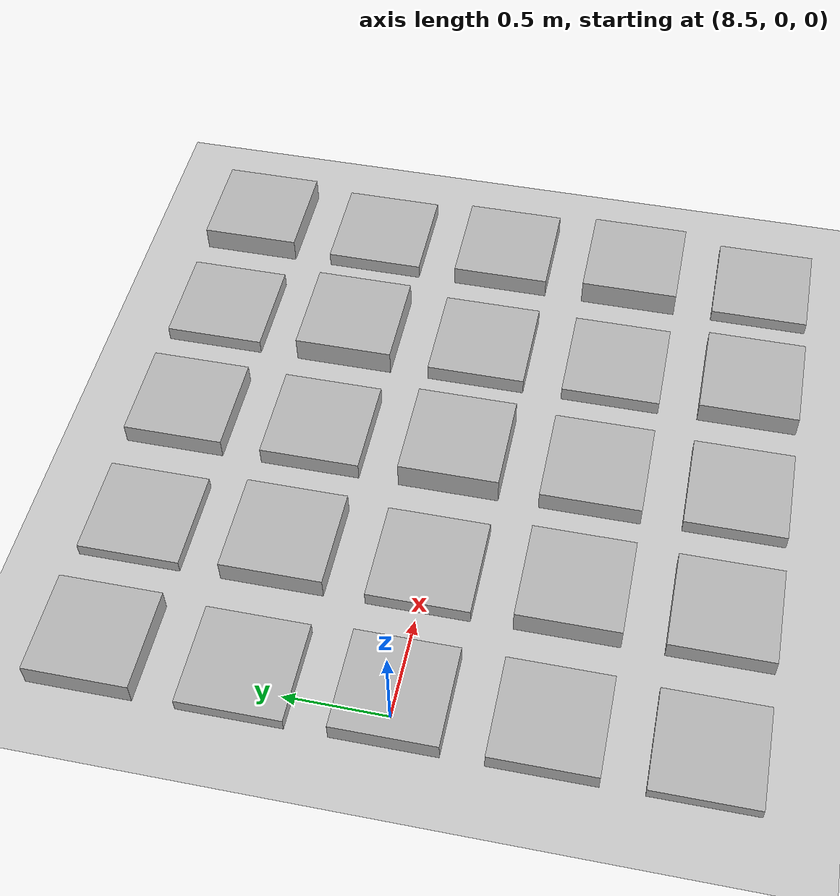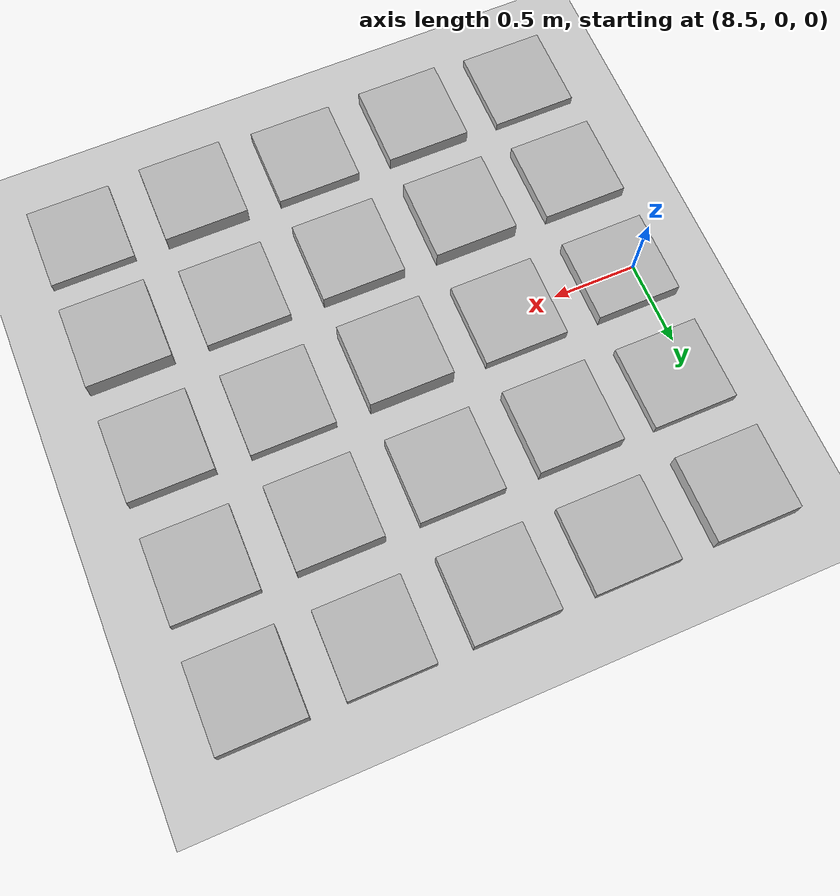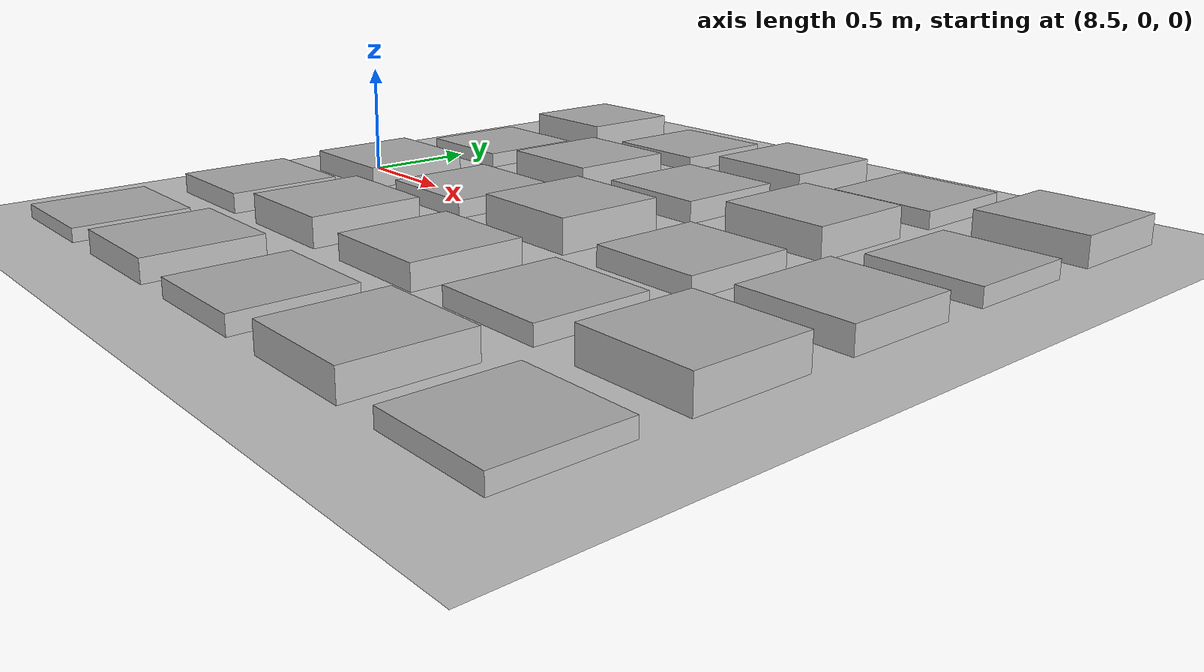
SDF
<?xml version="1.0"?>
<sdf version="1.7">
  <world name="rocks">
    <include>
      <uri>model://sun</uri>
    </include>

    <physics type="ode">
      <max_step_size>0.001</max_step_size>
      <real_time_update_rate>1000</real_time_update_rate>
    </physics>
    <gravity>0 0 -9.81</gravity>

    <model name="ground_plane">
      <static>true</static>
      <pose>0 0 0 0 0 0</pose>
      <link name="link">
        <collision name="collision">
          <geometry>
            <plane>
              <normal>0 0 1</normal>
              <size>200 200</size>
            </plane>
          </geometry>
        </collision>
        <visual name="visual">
          <geometry>
            <plane>
              <normal>0 0 1</normal>
              <size>200 200</size>
            </plane>
          </geometry>
        </visual>
      </link>
    </model>

    <!-- Rough patch built from small height bumps (self-contained, no external models) -->
    <model name="rough_patch">
      <static>true</static>
      <pose>10 0 0 0 0 0</pose>
      <link name="link">
        <!-- 5x5 grid of bumps: spacing 0.70m, varying heights -->
        <collision name="b00"><pose>-1.40 -1.40 0.03 0 0 0</pose><geometry><box><size>0.50 0.50 0.06</size></box></geometry></collision>
        <visual name="b00v"><pose>-1.40 -1.40 0.03 0 0 0</pose><geometry><box><size>0.50 0.50 0.06</size></box></geometry></visual>

        <collision name="b01"><pose>-0.70 -1.40 0.05 0 0 0</pose><geometry><box><size>0.50 0.50 0.10</size></box></geometry></collision>
        <visual name="b01v"><pose>-0.70 -1.40 0.05 0 0 0</pose><geometry><box><size>0.50 0.50 0.10</size></box></geometry></visual>

        <collision name="b02"><pose>0.00 -1.40 0.04 0 0 0</pose><geometry><box><size>0.50 0.50 0.08</size></box></geometry></collision>
        <visual name="b02v"><pose>0.00 -1.40 0.04 0 0 0</pose><geometry><box><size>0.50 0.50 0.08</size></box></geometry></visual>

        <collision name="b03"><pose>0.70 -1.40 0.06 0 0 0</pose><geometry><box><size>0.50 0.50 0.12</size></box></geometry></collision>
        <visual name="b03v"><pose>0.70 -1.40 0.06 0 0 0</pose><geometry><box><size>0.50 0.50 0.12</size></box></geometry></visual>

        <collision name="b04"><pose>1.40 -1.40 0.035 0 0 0</pose><geometry><box><size>0.50 0.50 0.07</size></box></geometry></collision>
        <visual name="b04v"><pose>1.40 -1.40 0.035 0 0 0</pose><geometry><box><size>0.50 0.50 0.07</size></box></geometry></visual>

        <collision name="b10"><pose>-1.40 -0.70 0.045 0 0 0</pose><geometry><box><size>0.50 0.50 0.09</size></box></geometry></collision>
        <visual name="b10v"><pose>-1.40 -0.70 0.045 0 0 0</pose><geometry><box><size>0.50 0.50 0.09</size></box></geometry></visual>

        <collision name="b11"><pose>-0.70 -0.70 0.065 0 0 0</pose><geometry><box><size>0.50 0.50 0.13</size></box></geometry></collision>
        <visual name="b11v"><pose>-0.70 -0.70 0.065 0 0 0</pose><geometry><box><size>0.50 0.50 0.13</size></box></geometry></visual>

        <collision name="b12"><pose>0.00 -0.70 0.055 0 0 0</pose><geometry><box><size>0.50 0.50 0.11</size></box></geometry></collision>
        <visual name="b12v"><pose>0.00 -0.70 0.055 0 0 0</pose><geometry><box><size>0.50 0.50 0.11</size></box></geometry></visual>

        <collision name="b13"><pose>0.70 -0.70 0.040 0 0 0</pose><geometry><box><size>0.50 0.50 0.08</size></box></geometry></collision>
        <visual name="b13v"><pose>0.70 -0.70 0.040 0 0 0</pose><geometry><box><size>0.50 0.50 0.08</size></box></geometry></visual>

        <collision name="b14"><pose>1.40 -0.70 0.070 0 0 0</pose><geometry><box><size>0.50 0.50 0.14</size></box></geometry></collision>
        <visual name="b14v"><pose>1.40 -0.70 0.070 0 0 0</pose><geometry><box><size>0.50 0.50 0.14</size></box></geometry></visual>

        <collision name="b20"><pose>-1.40 0.00 0.050 0 0 0</pose><geometry><box><size>0.50 0.50 0.10</size></box></geometry></collision>
        <visual name="b20v"><pose>-1.40 0.00 0.050 0 0 0</pose><geometry><box><size>0.50 0.50 0.10</size></box></geometry></visual>

        <collision name="b21"><pose>-0.70 0.00 0.040 0 0 0</pose><geometry><box><size>0.50 0.50 0.08</size></box></geometry></collision>
        <visual name="b21v"><pose>-0.70 0.00 0.040 0 0 0</pose><geometry><box><size>0.50 0.50 0.08</size></box></geometry></visual>

        <collision name="b22"><pose>0.00 0.00 0.075 0 0 0</pose><geometry><box><size>0.50 0.50 0.15</size></box></geometry></collision>
        <visual name="b22v"><pose>0.00 0.00 0.075 0 0 0</pose><geometry><box><size>0.50 0.50 0.15</size></box></geometry></visual>

        <collision name="b23"><pose>0.70 0.00 0.045 0 0 0</pose><geometry><box><size>0.50 0.50 0.09</size></box></geometry></collision>
        <visual name="b23v"><pose>0.70 0.00 0.045 0 0 0</pose><geometry><box><size>0.50 0.50 0.09</size></box></geometry></visual>

        <collision name="b24"><pose>1.40 0.00 0.055 0 0 0</pose><geometry><box><size>0.50 0.50 0.11</size></box></geometry></collision>
        <visual name="b24v"><pose>1.40 0.00 0.055 0 0 0</pose><geometry><box><size>0.50 0.50 0.11</size></box></geometry></visual>

        <collision name="b30"><pose>-1.40 0.70 0.035 0 0 0</pose><geometry><box><size>0.50 0.50 0.07</size></box></geometry></collision>
        <visual name="b30v"><pose>-1.40 0.70 0.035 0 0 0</pose><geometry><box><size>0.50 0.50 0.07</size></box></geometry></visual>

        <collision name="b31"><pose>-0.70 0.70 0.060 0 0 0</pose><geometry><box><size>0.50 0.50 0.12</size></box></geometry></collision>
        <visual name="b31v"><pose>-0.70 0.70 0.060 0 0 0</pose><geometry><box><size>0.50 0.50 0.12</size></box></geometry></visual>

        <collision name="b32"><pose>0.00 0.70 0.050 0 0 0</pose><geometry><box><size>0.50 0.50 0.10</size></box></geometry></collision>
        <visual name="b32v"><pose>0.00 0.70 0.050 0 0 0</pose><geometry><box><size>0.50 0.50 0.10</size></box></geometry></visual>

        <collision name="b33"><pose>0.70 0.70 0.070 0 0 0</pose><geometry><box><size>0.50 0.50 0.14</size></box></geometry></collision>
        <visual name="b33v"><pose>0.70 0.70 0.070 0 0 0</pose><geometry><box><size>0.50 0.50 0.14</size></box></geometry></visual>

        <collision name="b34"><pose>1.40 0.70 0.040 0 0 0</pose><geometry><box><size>0.50 0.50 0.08</size></box></geometry></collision>
        <visual name="b34v"><pose>1.40 0.70 0.040 0 0 0</pose><geometry><box><size>0.50 0.50 0.08</size></box></geometry></visual>

        <collision name="b40"><pose>-1.40 1.40 0.060 0 0 0</pose><geometry><box><size>0.50 0.50 0.12</size></box></geometry></collision>
        <visual name="b40v"><pose>-1.40 1.40 0.060 0 0 0</pose><geometry><box><size>0.50 0.50 0.12</size></box></geometry></visual>

        <collision name="b41"><pose>-0.70 1.40 0.035 0 0 0</pose><geometry><box><size>0.50 0.50 0.07</size></box></geometry></collision>
        <visual name="b41v"><pose>-0.70 1.40 0.035 0 0 0</pose><geometry><box><size>0.50 0.50 0.07</size></box></geometry></visual>

        <collision name="b42"><pose>0.00 1.40 0.055 0 0 0</pose><geometry><box><size>0.50 0.50 0.11</size></box></geometry></collision>
        <visual name="b42v"><pose>0.00 1.40 0.055 0 0 0</pose><geometry><box><size>0.50 0.50 0.11</size></box></geometry></visual>

        <collision name="b43"><pose>0.70 1.40 0.040 0 0 0</pose><geometry><box><size>0.50 0.50 0.08</size></box></geometry></collision>
        <visual name="b43v"><pose>0.70 1.40 0.040 0 0 0</pose><geometry><box><size>0.50 0.50 0.08</size></box></geometry></visual>

        <collision name="b44"><pose>1.40 1.40 0.065 0 0 0</pose><geometry><box><size>0.50 0.50 0.13</size></box></geometry></collision>
        <visual name="b44v"><pose>1.40 1.40 0.065 0 0 0</pose><geometry><box><size>0.50 0.50 0.13</size></box></geometry></visual>
      </link>
    </model>
  </world>
</sdf>
